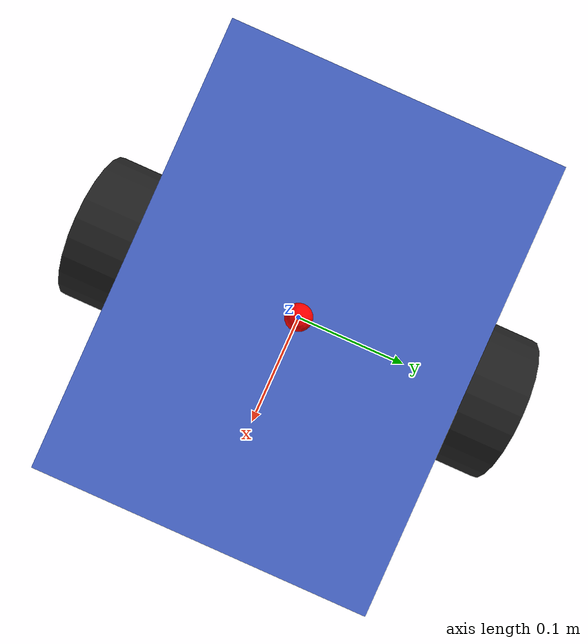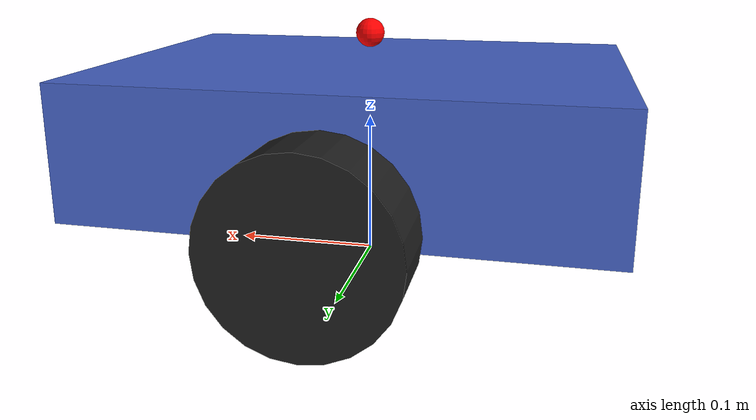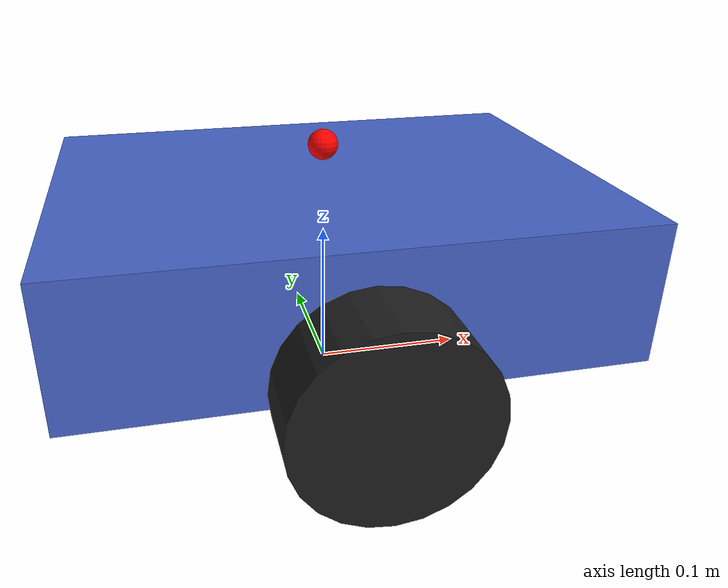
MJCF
<mujoco model="diffbot">
  <compiler angle="degree"/>

  <default>
    <geom condim="3" friction="0.8 0.1 0.01"/>
    <joint armature="0.01"/>
  </default>

  <worldbody>
    <body name="base_link" pos="0 0 0.095">
      <freejoint name="base_freejoint"/>

      <!-- IMU site at chassis centre -->
      <site name="imu_site" pos="0 0 0" size="0.005"/>

      <!-- Lidar mount site on top of chassis (z = chassis_half + small_offset) -->
      <site name="lidar_site" pos="0 0 0.065" size="0.01" rgba="1 0 0 1"/>

      <!-- Chassis -->
      <geom name="chassis" type="box" size="0.175 0.13 0.045"
            mass="5.0" rgba="0.28 0.40 0.80 1"/>

      <!-- Left drive wheel -->
      <body name="left_wheel" pos="0 0.155 -0.035">
        <joint name="left_wheel_joint" type="hinge" axis="0 1 0" damping="0.1"/>
        <geom name="left_wheel_geom" type="cylinder" size="0.06 0.025"
              euler="90 0 0" mass="0.5" rgba="0.12 0.12 0.12 1"
              friction="1.5 0.01 0.001"/>
      </body>

      <!-- Right drive wheel -->
      <body name="right_wheel" pos="0 -0.155 -0.035">
        <joint name="right_wheel_joint" type="hinge" axis="0 1 0" damping="0.1"/>
        <geom name="right_wheel_geom" type="cylinder" size="0.06 0.025"
              euler="90 0 0" mass="0.5" rgba="0.12 0.12 0.12 1"
              friction="1.5 0.01 0.001"/>
      </body>

      <!-- Front passive caster -->
      <body name="caster_front" pos="0.14 0 -0.075">
        <joint name="caster_front_joint" type="ball" damping="0.01"/>
        <geom name="caster_front_geom" type="sphere" size="0.02"
              mass="0.1" rgba="0.55 0.55 0.55 1"
              friction="0.01 0.001 0.0001"/>
      </body>

      <!-- Rear passive caster -->
      <body name="caster_rear" pos="-0.14 0 -0.075">
        <joint name="caster_rear_joint" type="ball" damping="0.01"/>
        <geom name="caster_rear_geom" type="sphere" size="0.02"
              mass="0.1" rgba="0.55 0.55 0.55 1"
              friction="0.01 0.001 0.0001"/>
      </body>
    </body>
  </worldbody>

  <actuator>
    <velocity name="left_wheel_vel"  joint="left_wheel_joint"
              kv="5" forcelimited="true" forcerange="-15 15"/>
    <velocity name="right_wheel_vel" joint="right_wheel_joint"
              kv="5" forcelimited="true" forcerange="-15 15"/>
  </actuator>

  <!-- IMU sensors at imu_site -->
  <sensor>
    <accelerometer name="imu_accel" site="imu_site"/>
    <gyro          name="imu_gyro"  site="imu_site"/>
  </sensor>
</mujoco>
